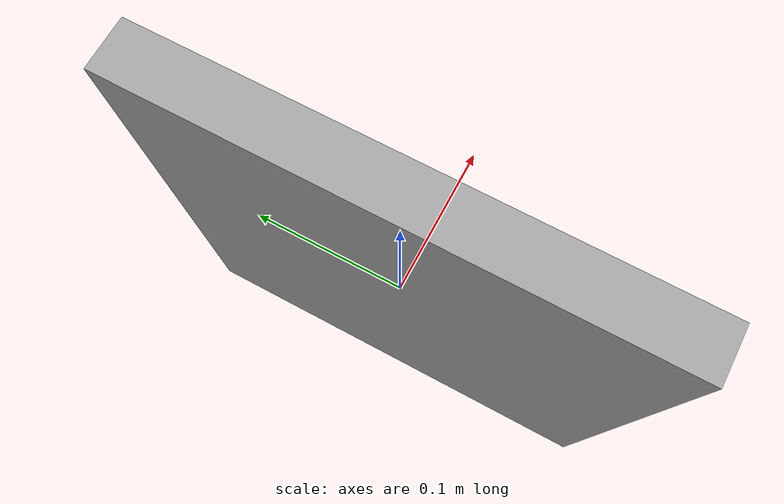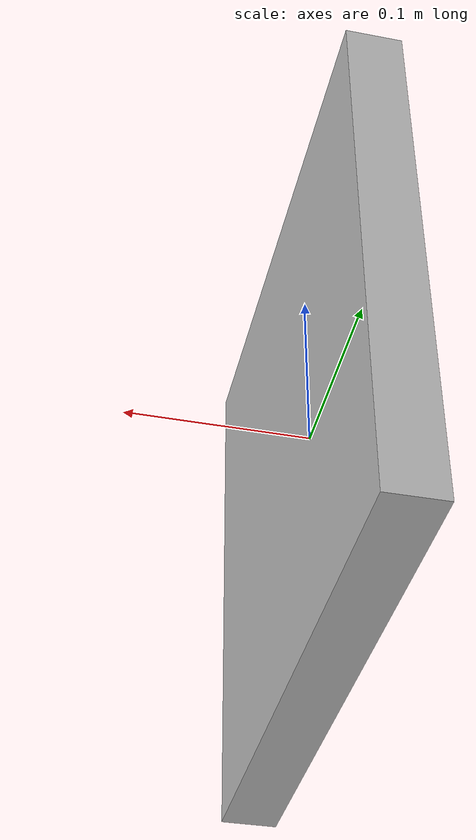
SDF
<?xml version="1.0" ?>
<sdf version="1.5">
  <model name="aruco_marker_2">
    <static>false</static>
    <link name="link">
      <collision name="collision">
        <geometry>
          <box>
            <size>0.03 0.3 0.3</size>
          </box>
        </geometry>
        <surface>
          <friction>
            <ode>
              <mu>100</mu>
              <mu2>50</mu2>
            </ode>
          </friction>
        </surface>
      </collision>

      <visual name="visual">
        <geometry>
          <box>
            <size>0.03 0.3 0.3</size>
          </box>
        </geometry>
        <material>
          <script>
            <uri>model://aruco_marker_2/materials/scripts</uri>
            <uri>model://aruco_marker_2/materials/textures</uri>
            <name>aruco_marker_2/Diffuse</name>
          </script>
        </material>
      </visual>
    </link>
  </model>
</sdf>
